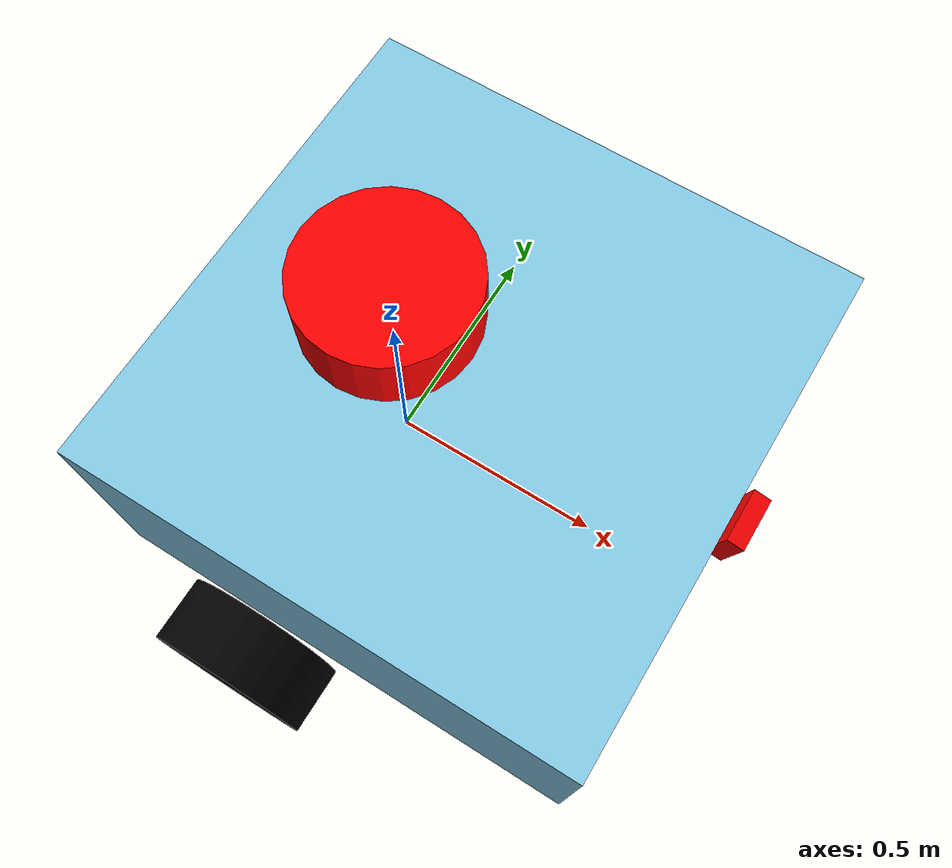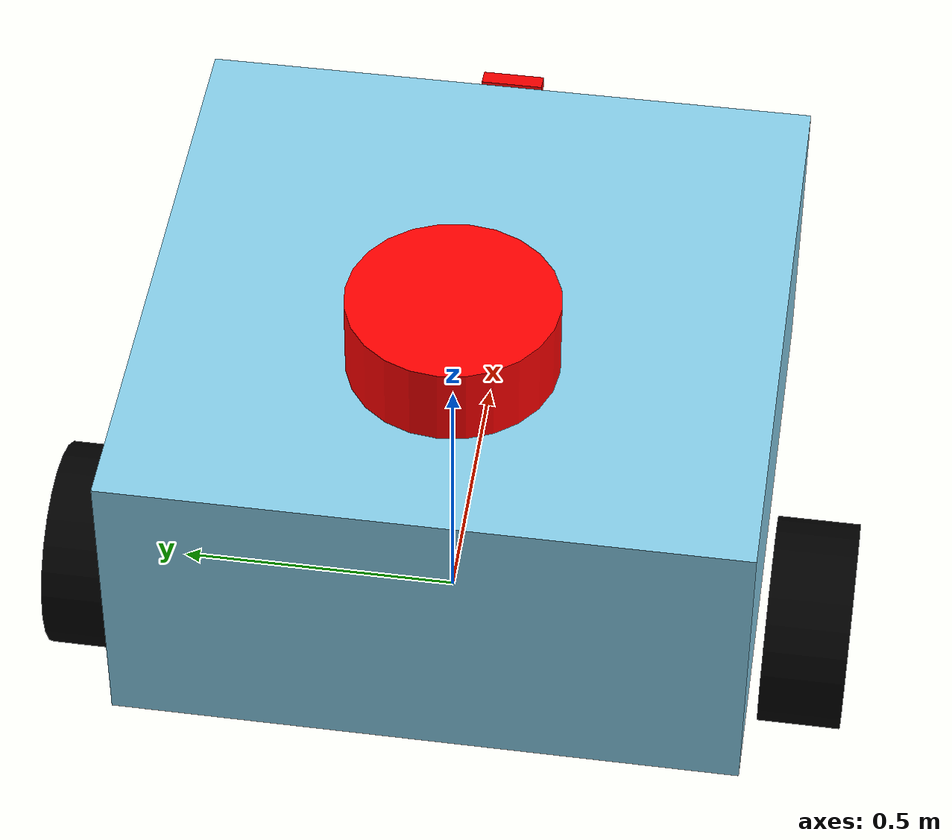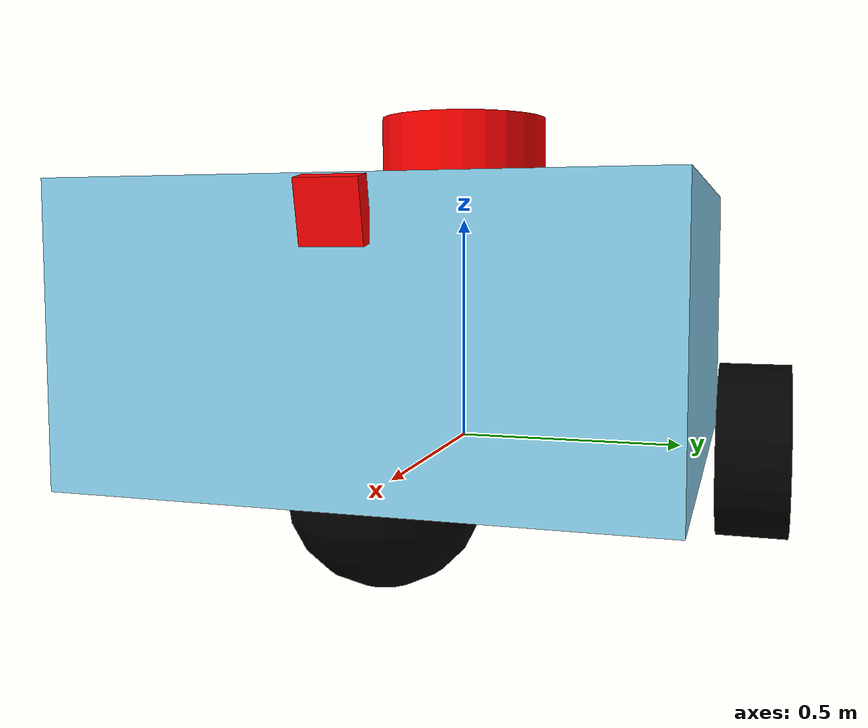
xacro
<?xml version="1.0"?>
<robot xmlns:xacro="http://www.ros.org/wiki/xacro"  name="robot">

    <xacro:include filename="robot_core_bigger.xacro" />

    <xacro:include filename="gazebo_control_bigger.xacro"/>

    <xacro:include filename="camera_bigger.xacro"/>

    <xacro:include filename="lidar_bigger.xacro"/>

</robot>

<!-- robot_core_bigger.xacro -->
<robot xmlns:xacro="http://www.ros.org/wiki/xacro" >

    <xacro:include filename="inertial_macros.xacro"/>

    <material name="white">
        <color rgba="1 1 1 1" />
    </material>

    <material name="orange">
        <color rgba="1 0.3 0.1 1"/>
    </material>

    <material name="blue">
        <color rgba="0.53 0.81 0.92 1"/>
    </material>

    <material name="black">
        <color rgba="0 0 0 1"/>
    </material>

    <material name="red">
        <color rgba="1 0 0 1"/>
    </material>

    <!-- BASE LINK -->

    <link name="base_link">
    </link>

    <!-- BASE_FOOTPRINT LINK -->

    <joint name="base_footprint_joint" type="fixed">
        <parent link="base_link"/>
        <child link="base_footprint"/>
        <origin xyz="0 0 0" rpy="0 0 0"/>
    </joint>

    <link name="base_footprint">
    </link>

    <!-- CHASSIS LINK -->

    <joint name="chassis_joint" type="fixed">
        <parent link="base_link"/>
        <child link="chassis"/>
        <origin xyz="-0.375 0 0"/>
    </joint>

    <link name="chassis">
        <visual>
            <origin xyz="0.5625 0 0.28125"/>
            <geometry>
                <box size="1.125 1.125 0.5625"/>
            </geometry>
            <material name="blue"/>
        </visual>
        <collision>
            <origin xyz="0.5625 0 0.28125"/>
            <geometry>
                <box size="1.125 1.125 0.5625"/>
            </geometry>
        </collision>
        <xacro:inertial_box mass="0.375" x="1.125" y="1.125" z="0.5625">
            <origin xyz="0.5625 0 0.28125" rpy="0 0 0"/>
        </xacro:inertial_box>
    </link>

    <gazebo reference="chassis">
        <material>Gazebo/SkyBlue</material>
    </gazebo>

    <!-- LEFT WHEEL LINK -->

    <joint name="left_wheel_joint" type="continuous">
        <parent link="base_link"/>
        <child link="left_wheel"/>
        <origin xyz="0 0.65625 0" rpy="-${pi/2} 0 0" />
        <axis xyz="0 0 1"/>
    </joint>

    <link name="left_wheel">
        <visual>
            <geometry>
                <cylinder radius="0.1875" length="0.15"/>
            </geometry>
            <material name="black"/>
        </visual>
        <collision>
            <geometry>
                <cylinder radius="0.1875" length="0.15"/>
            </geometry>
        </collision>
        <xacro:inertial_cylinder mass="0.375" length="0.15" radius="0.1875">
            <origin xyz="0 0 0" rpy="0 0 0"/>
        </xacro:inertial_cylinder>
    </link>

    <gazebo reference="left_wheel">
        <material>Gazebo/Black</material>
    </gazebo>

    <!-- RIGHT WHEEL LINK -->

    <joint name="right_wheel_joint" type="continuous">
        <parent link="base_link"/>
        <child link="right_wheel"/>
        <origin xyz="0 -0.65625 0" rpy="${pi/2} 0 0" />
        <axis xyz="0 0 -1"/>
    </joint>

    <link name="right_wheel">
        <visual>
            <geometry>
                <cylinder radius="0.1875" length="0.15"/>
            </geometry>
            <material name="black"/>
        </visual>
        <collision>
            <geometry>
                <cylinder radius="0.1875" length="0.15"/>
            </geometry>
        </collision>
        <xacro:inertial_cylinder mass="0.375" length="0.15" radius="0.1875">
            <origin xyz="0 0 0" rpy="0 0 0"/>
        </xacro:inertial_cylinder>
    </link>

    <gazebo reference="right_wheel">
        <material>Gazebo/Black</material>
    </gazebo>

    <!-- CASTER WHEEL LINK -->

    <joint name="caster_wheel_joint" type="fixed">
        <parent link="chassis"/>
        <child link="caster_wheel"/>
        <origin xyz="0.9 0 0"/>
    </joint>

    <link name="caster_wheel">
        <visual>
            <geometry>
                <sphere radius="0.1875"/>
            </geometry>
            <material name="black"/>
        </visual>
        <collision>
            <geometry>
                <sphere radius="0.1875"/>
            </geometry>
        </collision>
        <xacro:inertial_sphere mass="2.25" radius="0.1875">
            <origin xyz="0 0 0" rpy="0 0 0"/>
        </xacro:inertial_sphere>
    </link>

    <gazebo reference="caster_wheel">
        <material>Gazebo/Black</material>
        <mu1 value="0.005"/>
        <mu2 value="0.005"/>
    </gazebo>

</robot>

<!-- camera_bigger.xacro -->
<robot xmlns:xacro="http://www.ros.org/wiki/xacro" >

    <joint name="camera_joint" type="fixed">
        <parent link="chassis"/>
        <child link="camera_link"/>
        <origin xyz="1.14375 0 0.5" rpy="0 0.2 0"/>
    </joint>

    <link name="camera_link">
        <visual>
            <geometry>
                <box size="0.0375 0.1125 0.1125"/>
            </geometry>
            <material name="red"/>
        </visual>
    </link>

    <joint name="camera_optical_joint" type="fixed">
        <parent link="camera_link"/>
        <child link="camera_link_optical"/>
        <origin xyz="0.22875 0 0.06" rpy="${-pi/2} 0 ${-pi/2}"/>
    </joint>

    <link name="camera_link_optical"></link>

    <gazebo reference="camera_link">
        <material>Gazebo/Red</material>

        <sensor name="camera" type="camera">
            <pose> 0 0 0 0 0 0 </pose>
            <visualize>true</visualize>
            <update_rate>10</update_rate>
            <camera>
                <horizontal_fov>1.098</horizontal_fov>
                <image>
                    <format>R8G8B8</format>
                    <width>1600</width>
                    <height>1200</height>
                </image>
                <clip>
                    <near>0.1</near>
                    <far>40.0</far>
                </clip>
            </camera>
            <plugin name="camera_controller" filename="libgazebo_ros_camera.so">
                <frame_name>camera_link_optical</frame_name>
            </plugin>
        </sensor>

    </gazebo>

</robot>

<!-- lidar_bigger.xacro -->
<robot xmlns:xacro="http://www.ros.org/wiki/xacro" >

    <joint name="laser_joint" type="fixed">
        <parent link="chassis"/>
        <child link="laser_frame"/>
        <origin xyz="0.375 0 0.65625" rpy="0 0 0"/>
    </joint>

    <link name="laser_frame">
        <visual>
            <geometry>
                <cylinder radius="0.1875" length="0.15"/>
            </geometry>
            <material name="red"/>
        </visual>
        <collision>
            <geometry>
                <cylinder radius="0.1875" length="0.15"/>
            </geometry>
        </collision>
        <xacro:inertial_cylinder mass="0.75" length="0.15" radius="0.1875">
            <origin xyz="0 0 0" rpy="0 0 0"/>
        </xacro:inertial_cylinder>
    </link>

    <gazebo reference="laser_frame">
        <material>Gazebo/Red</material>

        <sensor name="laser" type="ray">
            <pose> 0 0 0 0 0 0 </pose>
            <visualize>true</visualize>
            <update_rate>10</update_rate>
            <ray>
                <scan>
                    <horizontal>
                        <samples>360</samples>
                        <min_angle>-3.14</min_angle>
                        <max_angle>3.14</max_angle>
                    </horizontal>
                </scan>
                <range>
                    <min>3.75</min>
                    <max>37.5</max>
                </range>
            </ray>
            <plugin name="laser_controller" filename="libgazebo_ros_ray_sensor.so">
                <ros>
                    <argument>~/out:=scan</argument>
                </ros>
                <output_type>sensor_msgs/LaserScan</output_type>
                <frame_name>laser_frame</frame_name>
            </plugin>
        </sensor>
    </gazebo>

</robot>
